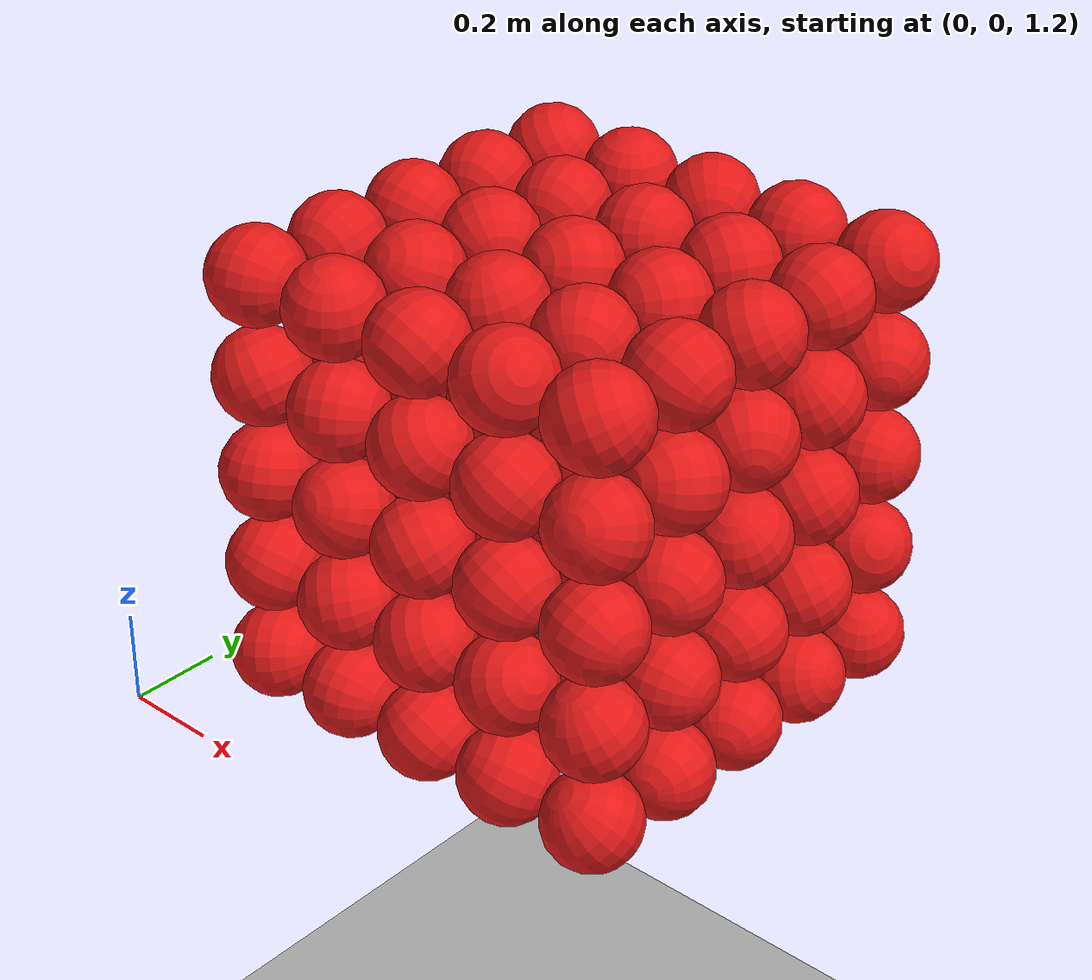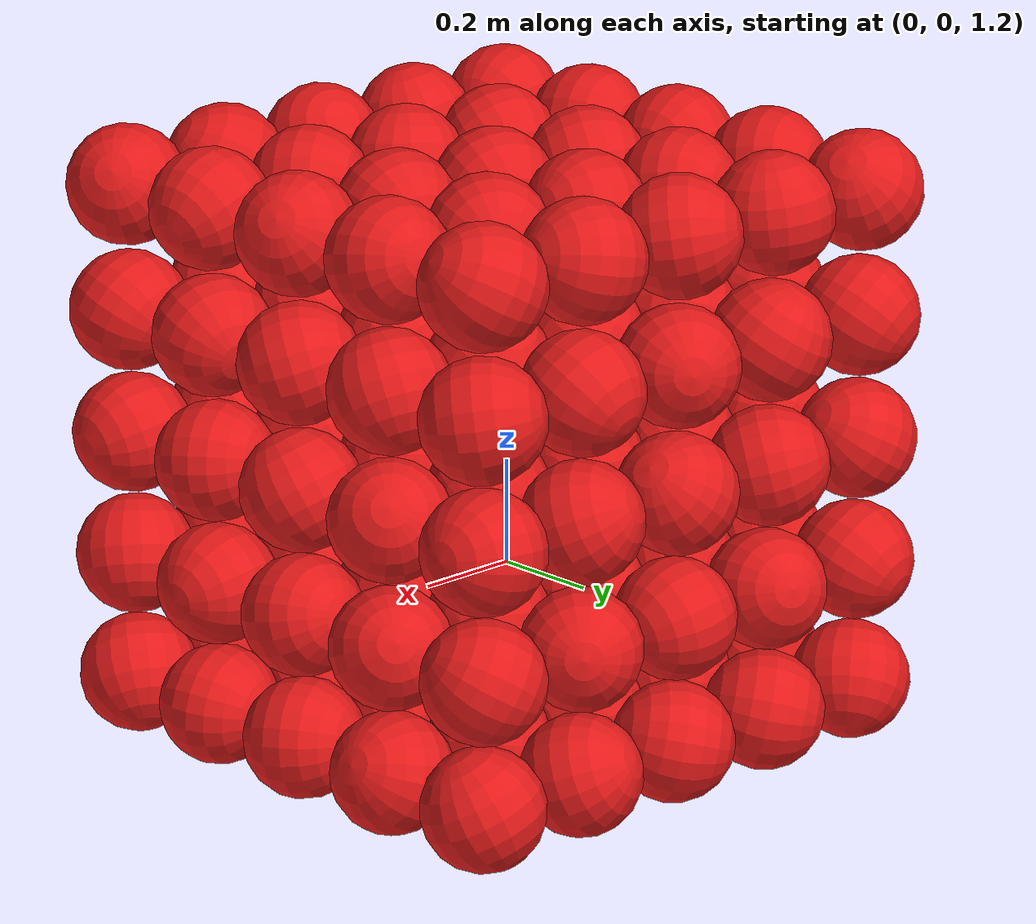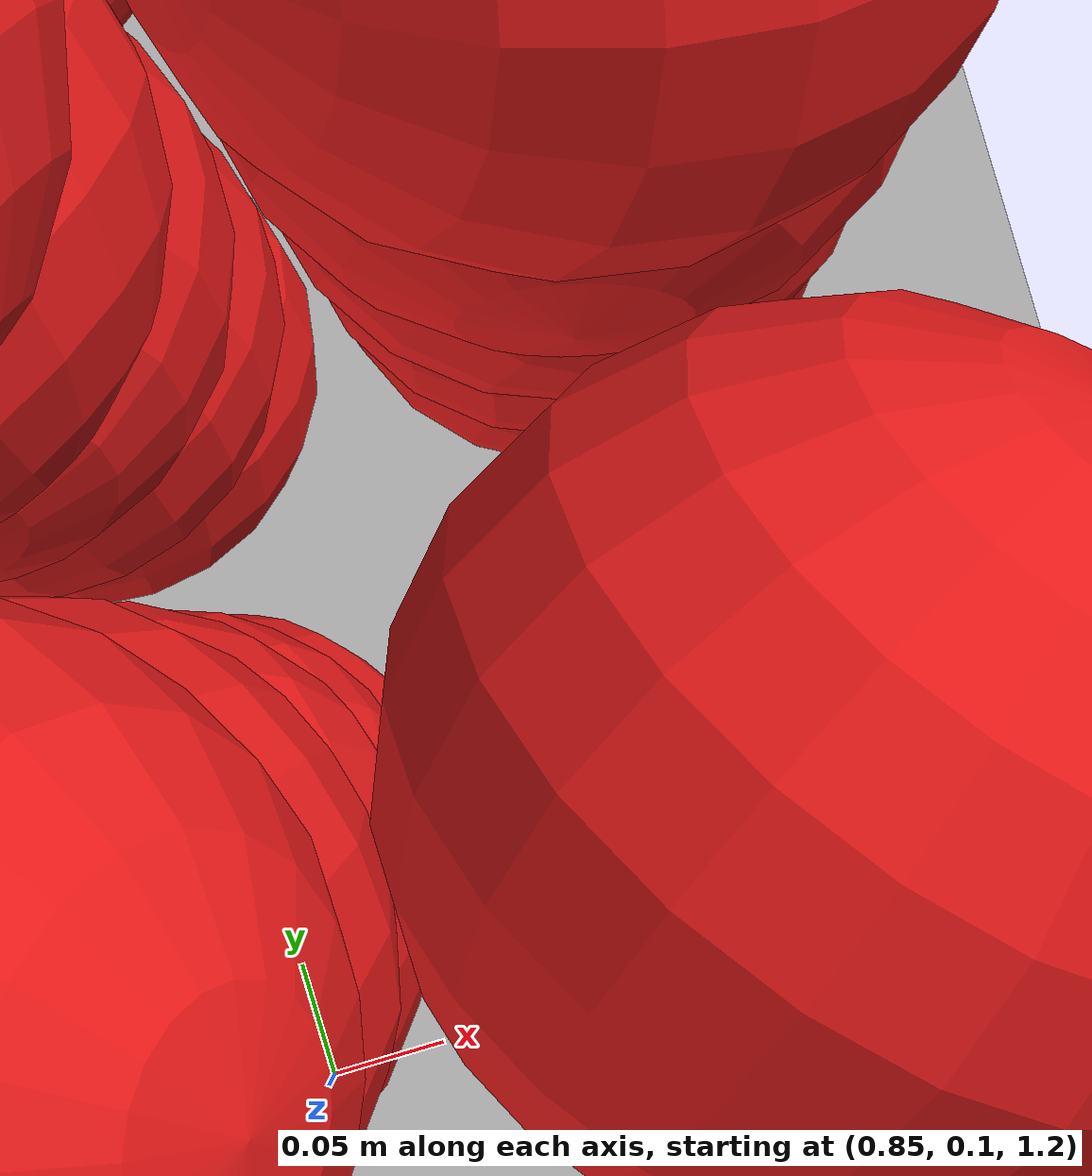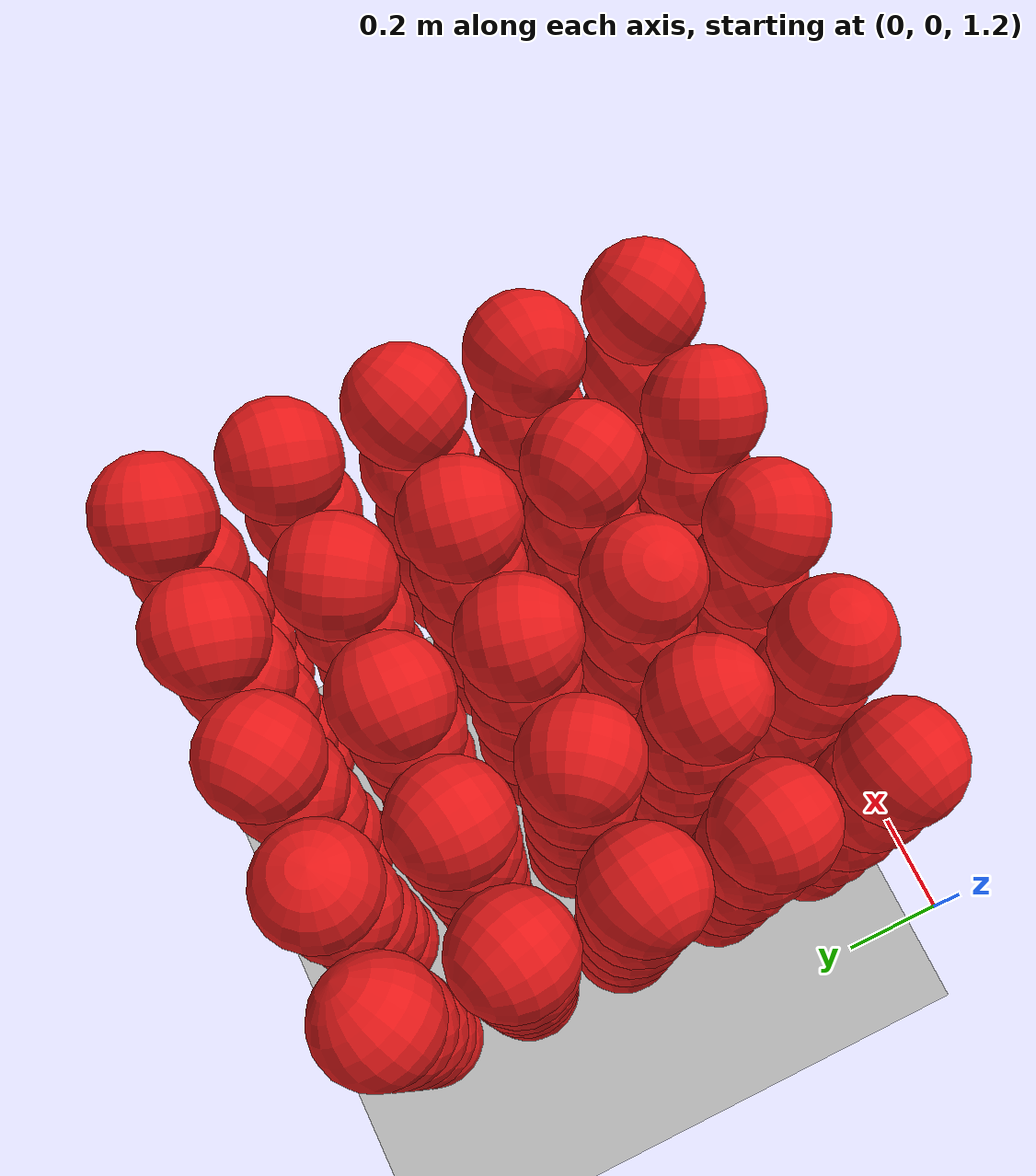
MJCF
<mujoco model="thousand">
    <compiler angle="degree"/>

    <option jacobian="sparse" cone="elliptic"/>

    <size njmax="5000" nconmax="2000" nstack="1000000000"/>

    <default>
        <geom solimp=".9 .9 .01"/>

        <default class="object5">
			<geom type="sphere" material="geom" rgba=".9 .1 .1 1" size="0.100000"/>
        </default>
    </default>

    <asset>
        <texture type="skybox" builtin="gradient" width="128" height="128" rgb1=".4 .6 .8" rgb2="0 0 0"/>
        <texture name="texgeom" type="cube" builtin="flat" mark="cross" width="128" height="128"
            rgb1="0.6 0.6 0.6" rgb2="0.6 0.6 0.6" markrgb="1 1 1"/>
        <texture name="texplane" type="2d" builtin="checker" rgb1=".4 .4 .4" rgb2=".6 .6 .6"
            width="512" height="512"/>
        <material name='geom' texture="texgeom" texuniform="true"/>
        <material name='MatPlane' reflectance='0.3' texture="texplane" texrepeat="1 1" texuniform="true"/>
    </asset>

    <visual>
        <quality shadowsize="4096" offsamples="8"/>
        <map znear="0.1" force="0.05"/>
    </visual>

    <statistic extent="4"/>

    <worldbody>
        <light directional="true" diffuse=".8 .8 .8" pos="0 0 10" dir="0 0 -10"/>

        <geom pos="0 0 0" type="plane" size="200 200 5" rgba=".7 .7 .7 1" material="MatPlane"/>
		<body pos="0.210204 0.210387 1.311065" quat="-0.228573 0.640775 0.022163 0.732578"><inertial pos="0 0 0" mass="1500.000000" diaginertia="6.000000 6.000000 6.000000"/> <freejoint/> <geom class="object5"/> </body>
		<body pos="0.210301 0.210706 1.521915" quat="0.438948 -0.782514 0.352924 -0.265408"><inertial pos="0 0 0" mass="1500.000000" diaginertia="6.000000 6.000000 6.000000"/> <freejoint/> <geom class="object5"/> </body>
		<body pos="0.210502 0.210399 1.731960" quat="-0.741213 0.118067 -0.063209 -0.657775"><inertial pos="0 0 0" mass="1500.000000" diaginertia="6.000000 6.000000 6.000000"/> <freejoint/> <geom class="object5"/> </body>
		<body pos="0.210525 0.210320 1.941781" quat="-0.690845 0.193381 0.216633 -0.662123"><inertial pos="0 0 0" mass="1500.000000" diaginertia="6.000000 6.000000 6.000000"/> <freejoint/> <geom class="object5"/> </body>
		<body pos="0.210846 0.210862 2.151759" quat="0.609824 0.205652 0.691034 0.329081"><inertial pos="0 0 0" mass="1500.000000" diaginertia="6.000000 6.000000 6.000000"/> <freejoint/> <geom class="object5"/> </body>
		<body pos="0.210057 0.420009 1.311831" quat="-0.284909 -0.398940 -0.676387 -0.549704"><inertial pos="0 0 0" mass="1500.000000" diaginertia="6.000000 6.000000 6.000000"/> <freejoint/> <geom class="object5"/> </body>
		<body pos="0.210384 0.420837 1.521762" quat="0.878788 0.380558 -0.279840 0.067800"><inertial pos="0 0 0" mass="1500.000000" diaginertia="6.000000 6.000000 6.000000"/> <freejoint/> <geom class="object5"/> </body>
		<body pos="0.210744 0.420929 1.731128" quat="-0.538417 -0.331889 -0.312354 0.708796"><inertial pos="0 0 0" mass="1500.000000" diaginertia="6.000000 6.000000 6.000000"/> <freejoint/> <geom class="object5"/> </body>
		<body pos="0.210676 0.420017 1.941517" quat="0.018755 -0.158579 0.641740 0.750114"><inertial pos="0 0 0" mass="1500.000000" diaginertia="6.000000 6.000000 6.000000"/> <freejoint/> <geom class="object5"/> </body>
		<body pos="0.210555 0.420571 2.151232" quat="0.708227 -0.622613 0.174109 0.283644"><inertial pos="0 0 0" mass="1500.000000" diaginertia="6.000000 6.000000 6.000000"/> <freejoint/> <geom class="object5"/> </body>
		<body pos="0.210454 0.630754 1.311566" quat="0.429868 0.362306 0.720002 0.406872"><inertial pos="0 0 0" mass="1500.000000" diaginertia="6.000000 6.000000 6.000000"/> <freejoint/> <geom class="object5"/> </body>
		<body pos="0.210567 0.630600 1.521591" quat="0.811851 -0.102672 0.338495 -0.464519"><inertial pos="0 0 0" mass="1500.000000" diaginertia="6.000000 6.000000 6.000000"/> <freejoint/> <geom class="object5"/> </body>
		<body pos="0.210771 0.630160 1.731079" quat="-0.390053 -0.362059 -0.665592 -0.523220"><inertial pos="0 0 0" mass="1500.000000" diaginertia="6.000000 6.000000 6.000000"/> <freejoint/> <geom class="object5"/> </body>
		<body pos="0.210992 0.630611 1.941483" quat="-0.417193 0.773116 0.351419 0.323644"><inertial pos="0 0 0" mass="1500.000000" diaginertia="6.000000 6.000000 6.000000"/> <freejoint/> <geom class="object5"/> </body>
		<body pos="0.210175 0.630470 2.151805" quat="-0.532634 0.402605 0.502252 -0.549502"><inertial pos="0 0 0" mass="1500.000000" diaginertia="6.000000 6.000000 6.000000"/> <freejoint/> <geom class="object5"/> </body>
		<body pos="0.210066 0.840060 1.311455" quat="0.684636 -0.274538 -0.114244 -0.665471"><inertial pos="0 0 0" mass="1500.000000" diaginertia="6.000000 6.000000 6.000000"/> <freejoint/> <geom class="object5"/> </body>
		<body pos="0.210653 0.840537 1.521729" quat="-0.547184 0.586343 -0.062551 -0.594037"><inertial pos="0 0 0" mass="1500.000000" diaginertia="6.000000 6.000000 6.000000"/> <freejoint/> <geom class="object5"/> </body>
		<body pos="0.210401 0.840868 1.731957" quat="-0.609122 0.566301 0.536965 0.141221"><inertial pos="0 0 0" mass="1500.000000" diaginertia="6.000000 6.000000 6.000000"/> <freejoint/> <geom class="object5"/> </body>
		<body pos="0.210490 0.840445 1.941397" quat="-0.558878 0.594331 -0.023001 0.577838"><inertial pos="0 0 0" mass="1500.000000" diaginertia="6.000000 6.000000 6.000000"/> <freejoint/> <geom class="object5"/> </body>
		<body pos="0.210728 0.840543 2.151631" quat="-0.376084 0.149526 0.596567 0.693045"><inertial pos="0 0 0" mass="1500.000000" diaginertia="6.000000 6.000000 6.000000"/> <freejoint/> <geom class="object5"/> </body>
		<body pos="0.210951 1.050067 1.311946" quat="-0.005706 -0.732092 -0.586996 -0.345608"><inertial pos="0 0 0" mass="1500.000000" diaginertia="6.000000 6.000000 6.000000"/> <freejoint/> <geom class="object5"/> </body>
		<body pos="0.210169 1.050735 1.521880" quat="0.554397 0.271389 0.470901 -0.630273"><inertial pos="0 0 0" mass="1500.000000" diaginertia="6.000000 6.000000 6.000000"/> <freejoint/> <geom class="object5"/> </body>
		<body pos="0.210523 1.050059 1.731814" quat="-0.337478 0.719338 0.491982 -0.355829"><inertial pos="0 0 0" mass="1500.000000" diaginertia="6.000000 6.000000 6.000000"/> <freejoint/> <geom class="object5"/> </body>
		<body pos="0.210211 1.050340 1.941459" quat="0.052675 -0.181026 0.461611 -0.866816"><inertial pos="0 0 0" mass="1500.000000" diaginertia="6.000000 6.000000 6.000000"/> <freejoint/> <geom class="object5"/> </body>
		<body pos="0.210375 1.050187 2.151372" quat="-0.296962 -0.845296 0.325189 0.302555"><inertial pos="0 0 0" mass="1500.000000" diaginertia="6.000000 6.000000 6.000000"/> <freejoint/> <geom class="object5"/> </body>
		<body pos="0.420833 0.210436 1.311636" quat="0.482702 -0.421638 -0.530500 0.554788"><inertial pos="0 0 0" mass="1500.000000" diaginertia="6.000000 6.000000 6.000000"/> <freejoint/> <geom class="object5"/> </body>
		<body pos="0.420026 0.210940 1.521627" quat="-0.508897 0.611561 -0.044826 0.604158"><inertial pos="0 0 0" mass="1500.000000" diaginertia="6.000000 6.000000 6.000000"/> <freejoint/> <geom class="object5"/> </body>
		<body pos="0.420973 0.210284 1.731539" quat="-0.725213 -0.510107 -0.220727 0.406371"><inertial pos="0 0 0" mass="1500.000000" diaginertia="6.000000 6.000000 6.000000"/> <freejoint/> <geom class="object5"/> </body>
		<body pos="0.420320 0.210553 1.941380" quat="0.360531 0.698950 -0.076200 -0.612927"><inertial pos="0 0 0" mass="1500.000000" diaginertia="6.000000 6.000000 6.000000"/> <freejoint/> <geom class="object5"/> </body>
		<body pos="0.420100 0.210336 2.151292" quat="0.675398 0.007714 0.128323 -0.726162"><inertial pos="0 0 0" mass="1500.000000" diaginertia="6.000000 6.000000 6.000000"/> <freejoint/> <geom class="object5"/> </body>
		<body pos="0.420267 0.420783 1.311538" quat="0.680383 0.058188 -0.134682 0.718021"><inertial pos="0 0 0" mass="1500.000000" diaginertia="6.000000 6.000000 6.000000"/> <freejoint/> <geom class="object5"/> </body>
		<body pos="0.420599 0.420941 1.521761" quat="-0.725787 -0.400761 -0.536051 -0.158974"><inertial pos="0 0 0" mass="1500.000000" diaginertia="6.000000 6.000000 6.000000"/> <freejoint/> <geom class="object5"/> </body>
		<body pos="0.420502 0.420841 1.731780" quat="0.288833 0.065541 -0.693715 0.656536"><inertial pos="0 0 0" mass="1500.000000" diaginertia="6.000000 6.000000 6.000000"/> <freejoint/> <geom class="object5"/> </body>
		<body pos="0.420628 0.420776 1.941868" quat="-0.696947 0.170010 -0.444035 0.536837"><inertial pos="0 0 0" mass="1500.000000" diaginertia="6.000000 6.000000 6.000000"/> <freejoint/> <geom class="object5"/> </body>
		<body pos="0.420928 0.420847 2.151039" quat="0.052634 -0.263320 -0.831225 -0.486783"><inertial pos="0 0 0" mass="1500.000000" diaginertia="6.000000 6.000000 6.000000"/> <freejoint/> <geom class="object5"/> </body>
		<body pos="0.420059 0.630231 1.311935" quat="0.363607 -0.547612 0.554979 0.509813"><inertial pos="0 0 0" mass="1500.000000" diaginertia="6.000000 6.000000 6.000000"/> <freejoint/> <geom class="object5"/> </body>
		<body pos="0.420046 0.630330 1.521717" quat="-0.710692 -0.390060 -0.293450 0.506615"><inertial pos="0 0 0" mass="1500.000000" diaginertia="6.000000 6.000000 6.000000"/> <freejoint/> <geom class="object5"/> </body>
		<body pos="0.420522 0.630115 1.731139" quat="-0.140787 -0.502458 0.655498 -0.545928"><inertial pos="0 0 0" mass="1500.000000" diaginertia="6.000000 6.000000 6.000000"/> <freejoint/> <geom class="object5"/> </body>
		<body pos="0.420228 0.630027 1.941891" quat="0.534085 -0.715543 -0.385426 0.232806"><inertial pos="0 0 0" mass="1500.000000" diaginertia="6.000000 6.000000 6.000000"/> <freejoint/> <geom class="object5"/> </body>
		<body pos="0.420612 0.630066 2.151177" quat="-0.569366 0.621541 0.138681 -0.519881"><inertial pos="0 0 0" mass="1500.000000" diaginertia="6.000000 6.000000 6.000000"/> <freejoint/> <geom class="object5"/> </body>
		<body pos="0.420675 0.840099 1.311004" quat="0.218042 -0.507207 -0.240376 -0.798385"><inertial pos="0 0 0" mass="1500.000000" diaginertia="6.000000 6.000000 6.000000"/> <freejoint/> <geom class="object5"/> </body>
		<body pos="0.420506 0.840263 1.521006" quat="0.666412 -0.008635 -0.437372 0.603760"><inertial pos="0 0 0" mass="1500.000000" diaginertia="6.000000 6.000000 6.000000"/> <freejoint/> <geom class="object5"/> </body>
		<body pos="0.420120 0.840532 1.731170" quat="0.642147 0.613926 -0.011498 -0.458923"><inertial pos="0 0 0" mass="1500.000000" diaginertia="6.000000 6.000000 6.000000"/> <freejoint/> <geom class="object5"/> </body>
		<body pos="0.420711 0.840757 1.941480" quat="0.602501 0.603525 0.125914 0.506849"><inertial pos="0 0 0" mass="1500.000000" diaginertia="6.000000 6.000000 6.000000"/> <freejoint/> <geom class="object5"/> </body>
		<body pos="0.420476 0.840778 2.151896" quat="0.702158 -0.567206 0.194476 0.383966"><inertial pos="0 0 0" mass="1500.000000" diaginertia="6.000000 6.000000 6.000000"/> <freejoint/> <geom class="object5"/> </body>
		<body pos="0.420191 1.050444 1.311292" quat="-0.131705 0.370434 -0.508478 0.766083"><inertial pos="0 0 0" mass="1500.000000" diaginertia="6.000000 6.000000 6.000000"/> <freejoint/> <geom class="object5"/> </body>
		<body pos="0.420536 1.050912 1.521466" quat="-0.237070 0.361569 0.480094 0.763266"><inertial pos="0 0 0" mass="1500.000000" diaginertia="6.000000 6.000000 6.000000"/> <freejoint/> <geom class="object5"/> </body>
		<body pos="0.420062 1.050783 1.731168" quat="0.552205 -0.614735 -0.013193 0.563023"><inertial pos="0 0 0" mass="1500.000000" diaginertia="6.000000 6.000000 6.000000"/> <freejoint/> <geom class="object5"/> </body>
		<body pos="0.420579 1.050276 1.941362" quat="0.067388 0.859884 -0.425201 0.274341"><inertial pos="0 0 0" mass="1500.000000" diaginertia="6.000000 6.000000 6.000000"/> <freejoint/> <geom class="object5"/> </body>
		<body pos="0.420038 1.050757 2.151187" quat="0.034734 0.331995 -0.941252 -0.051165"><inertial pos="0 0 0" mass="1500.000000" diaginertia="6.000000 6.000000 6.000000"/> <freejoint/> <geom class="object5"/> </body>
		<body pos="0.630921 0.210363 1.311064" quat="0.270297 -0.827019 0.333102 -0.363349"><inertial pos="0 0 0" mass="1500.000000" diaginertia="6.000000 6.000000 6.000000"/> <freejoint/> <geom class="object5"/> </body>
		<body pos="0.630691 0.210055 1.521327" quat="0.203034 0.868932 -0.081595 -0.443933"><inertial pos="0 0 0" mass="1500.000000" diaginertia="6.000000 6.000000 6.000000"/> <freejoint/> <geom class="object5"/> </body>
		<body pos="0.630037 0.210565 1.731046" quat="0.611353 -0.064349 0.516216 0.596345"><inertial pos="0 0 0" mass="1500.000000" diaginertia="6.000000 6.000000 6.000000"/> <freejoint/> <geom class="object5"/> </body>
		<body pos="0.630682 0.210357 1.941802" quat="0.165452 0.391106 0.178837 0.887513"><inertial pos="0 0 0" mass="1500.000000" diaginertia="6.000000 6.000000 6.000000"/> <freejoint/> <geom class="object5"/> </body>
		<body pos="0.630898 0.210456 2.151182" quat="-0.223856 -0.619225 -0.640835 0.394688"><inertial pos="0 0 0" mass="1500.000000" diaginertia="6.000000 6.000000 6.000000"/> <freejoint/> <geom class="object5"/> </body>
		<body pos="0.630243 0.420793 1.311799" quat="-0.621295 -0.017465 0.737302 0.264715"><inertial pos="0 0 0" mass="1500.000000" diaginertia="6.000000 6.000000 6.000000"/> <freejoint/> <geom class="object5"/> </body>
		<body pos="0.630215 0.420973 1.521537" quat="0.713987 0.673264 0.116981 -0.152492"><inertial pos="0 0 0" mass="1500.000000" diaginertia="6.000000 6.000000 6.000000"/> <freejoint/> <geom class="object5"/> </body>
		<body pos="0.630292 0.420803 1.731989" quat="0.020931 -0.771739 0.102734 -0.627237"><inertial pos="0 0 0" mass="1500.000000" diaginertia="6.000000 6.000000 6.000000"/> <freejoint/> <geom class="object5"/> </body>
		<body pos="0.630392 0.420207 1.941786" quat="-0.061966 -0.062397 0.503977 -0.859229"><inertial pos="0 0 0" mass="1500.000000" diaginertia="6.000000 6.000000 6.000000"/> <freejoint/> <geom class="object5"/> </body>
		<body pos="0.630951 0.420735 2.151619" quat="0.129529 -0.572167 0.809307 0.029491"><inertial pos="0 0 0" mass="1500.000000" diaginertia="6.000000 6.000000 6.000000"/> <freejoint/> <geom class="object5"/> </body>
		<body pos="0.630419 0.630775 1.311697" quat="0.690992 0.130948 -0.484361 -0.520363"><inertial pos="0 0 0" mass="1500.000000" diaginertia="6.000000 6.000000 6.000000"/> <freejoint/> <geom class="object5"/> </body>
		<body pos="0.630170 0.630066 1.521375" quat="0.312943 -0.153315 -0.641462 -0.683438"><inertial pos="0 0 0" mass="1500.000000" diaginertia="6.000000 6.000000 6.000000"/> <freejoint/> <geom class="object5"/> </body>
		<body pos="0.630656 0.630753 1.731068" quat="-0.533276 -0.008653 -0.624343 0.570734"><inertial pos="0 0 0" mass="1500.000000" diaginertia="6.000000 6.000000 6.000000"/> <freejoint/> <geom class="object5"/> </body>
		<body pos="0.630808 0.630677 1.941931" quat="0.203981 0.107061 0.720492 -0.654080"><inertial pos="0 0 0" mass="1500.000000" diaginertia="6.000000 6.000000 6.000000"/> <freejoint/> <geom class="object5"/> </body>
		<body pos="0.630085 0.630961 2.151405" quat="0.292098 -0.148129 0.780367 0.532695"><inertial pos="0 0 0" mass="1500.000000" diaginertia="6.000000 6.000000 6.000000"/> <freejoint/> <geom class="object5"/> </body>
		<body pos="0.630246 0.840416 1.311370" quat="0.373898 -0.599530 0.379888 -0.597034"><inertial pos="0 0 0" mass="1500.000000" diaginertia="6.000000 6.000000 6.000000"/> <freejoint/> <geom class="object5"/> </body>
		<body pos="0.630018 0.840447 1.521838" quat="0.418931 0.618308 -0.422738 0.513308"><inertial pos="0 0 0" mass="1500.000000" diaginertia="6.000000 6.000000 6.000000"/> <freejoint/> <geom class="object5"/> </body>
		<body pos="0.630256 0.840060 1.731969" quat="-0.552493 -0.343909 -0.593726 -0.473252"><inertial pos="0 0 0" mass="1500.000000" diaginertia="6.000000 6.000000 6.000000"/> <freejoint/> <geom class="object5"/> </body>
		<body pos="0.630680 0.840028 1.941852" quat="-0.431468 -0.154556 0.303748 0.835276"><inertial pos="0 0 0" mass="1500.000000" diaginertia="6.000000 6.000000 6.000000"/> <freejoint/> <geom class="object5"/> </body>
		<body pos="0.630292 0.840967 2.151779" quat="-0.567804 -0.440737 -0.425074 -0.550146"><inertial pos="0 0 0" mass="1500.000000" diaginertia="6.000000 6.000000 6.000000"/> <freejoint/> <geom class="object5"/> </body>
		<body pos="0.630910 1.050048 1.311910" quat="-0.771663 -0.298771 -0.547633 0.123979"><inertial pos="0 0 0" mass="1500.000000" diaginertia="6.000000 6.000000 6.000000"/> <freejoint/> <geom class="object5"/> </body>
		<body pos="0.630573 1.050303 1.521773" quat="-0.631993 -0.302699 0.561716 0.439810"><inertial pos="0 0 0" mass="1500.000000" diaginertia="6.000000 6.000000 6.000000"/> <freejoint/> <geom class="object5"/> </body>
		<body pos="0.630023 1.050966 1.731398" quat="0.028267 0.429985 0.098804 0.896968"><inertial pos="0 0 0" mass="1500.000000" diaginertia="6.000000 6.000000 6.000000"/> <freejoint/> <geom class="object5"/> </body>
		<body pos="0.630534 1.050641 1.941337" quat="0.649895 0.520137 -0.529918 0.162117"><inertial pos="0 0 0" mass="1500.000000" diaginertia="6.000000 6.000000 6.000000"/> <freejoint/> <geom class="object5"/> </body>
		<body pos="0.630871 1.050589 2.151766" quat="0.400570 -0.604196 0.221052 0.652401"><inertial pos="0 0 0" mass="1500.000000" diaginertia="6.000000 6.000000 6.000000"/> <freejoint/> <geom class="object5"/> </body>
		<body pos="0.840334 0.210491 1.311225" quat="0.479546 -0.172935 0.835734 0.204152"><inertial pos="0 0 0" mass="1500.000000" diaginertia="6.000000 6.000000 6.000000"/> <freejoint/> <geom class="object5"/> </body>
		<body pos="0.840354 0.210208 1.521077" quat="0.159892 -0.442870 0.156941 -0.868142"><inertial pos="0 0 0" mass="1500.000000" diaginertia="6.000000 6.000000 6.000000"/> <freejoint/> <geom class="object5"/> </body>
		<body pos="0.840897 0.210175 1.731721" quat="-0.840260 -0.051132 0.534682 0.073916"><inertial pos="0 0 0" mass="1500.000000" diaginertia="6.000000 6.000000 6.000000"/> <freejoint/> <geom class="object5"/> </body>
		<body pos="0.840635 0.210957 1.941243" quat="0.268264 0.512523 0.734025 0.355754"><inertial pos="0 0 0" mass="1500.000000" diaginertia="6.000000 6.000000 6.000000"/> <freejoint/> <geom class="object5"/> </body>
		<body pos="0.840969 0.210003 2.151080" quat="0.158044 -0.379546 0.249771 -0.876687"><inertial pos="0 0 0" mass="1500.000000" diaginertia="6.000000 6.000000 6.000000"/> <freejoint/> <geom class="object5"/> </body>
		<body pos="0.840582 0.420868 1.311131" quat="-0.248506 -0.749268 -0.578461 0.205488"><inertial pos="0 0 0" mass="1500.000000" diaginertia="6.000000 6.000000 6.000000"/> <freejoint/> <geom class="object5"/> </body>
		<body pos="0.840927 0.420738 1.521005" quat="-0.093078 0.105863 -0.278735 -0.949966"><inertial pos="0 0 0" mass="1500.000000" diaginertia="6.000000 6.000000 6.000000"/> <freejoint/> <geom class="object5"/> </body>
		<body pos="0.840672 0.420677 1.731378" quat="-0.124272 0.062459 -0.849373 -0.509137"><inertial pos="0 0 0" mass="1500.000000" diaginertia="6.000000 6.000000 6.000000"/> <freejoint/> <geom class="object5"/> </body>
		<body pos="0.840426 0.420143 1.941988" quat="0.516469 0.635136 0.552638 -0.156377"><inertial pos="0 0 0" mass="1500.000000" diaginertia="6.000000 6.000000 6.000000"/> <freejoint/> <geom class="object5"/> </body>
		<body pos="0.840377 0.420026 2.151775" quat="-0.307000 -0.627139 0.393345 -0.598103"><inertial pos="0 0 0" mass="1500.000000" diaginertia="6.000000 6.000000 6.000000"/> <freejoint/> <geom class="object5"/> </body>
		<body pos="0.840111 0.630942 1.311855" quat="0.532946 -0.549615 -0.397396 0.505933"><inertial pos="0 0 0" mass="1500.000000" diaginertia="6.000000 6.000000 6.000000"/> <freejoint/> <geom class="object5"/> </body>
		<body pos="0.840807 0.630276 1.521311" quat="-0.186634 -0.127433 -0.678513 0.698962"><inertial pos="0 0 0" mass="1500.000000" diaginertia="6.000000 6.000000 6.000000"/> <freejoint/> <geom class="object5"/> </body>
		<body pos="0.840790 0.630652 1.731975" quat="-0.706544 0.030301 0.060890 -0.704393"><inertial pos="0 0 0" mass="1500.000000" diaginertia="6.000000 6.000000 6.000000"/> <freejoint/> <geom class="object5"/> </body>
		<body pos="0.840644 0.630407 1.941692" quat="0.382326 -0.388144 0.650195 0.529544"><inertial pos="0 0 0" mass="1500.000000" diaginertia="6.000000 6.000000 6.000000"/> <freejoint/> <geom class="object5"/> </body>
		<body pos="0.840987 0.630612 2.151366" quat="-0.513904 0.699948 0.303498 0.392256"><inertial pos="0 0 0" mass="1500.000000" diaginertia="6.000000 6.000000 6.000000"/> <freejoint/> <geom class="object5"/> </body>
		<body pos="0.840177 0.840241 1.311904" quat="0.382931 0.613668 -0.380420 0.576243"><inertial pos="0 0 0" mass="1500.000000" diaginertia="6.000000 6.000000 6.000000"/> <freejoint/> <geom class="object5"/> </body>
		<body pos="0.840828 0.840880 1.521054" quat="-0.342626 0.486849 0.623328 -0.506999"><inertial pos="0 0 0" mass="1500.000000" diaginertia="6.000000 6.000000 6.000000"/> <freejoint/> <geom class="object5"/> </body>
		<body pos="0.840301 0.840052 1.731546" quat="-0.106826 -0.511695 -0.498422 -0.691616"><inertial pos="0 0 0" mass="1500.000000" diaginertia="6.000000 6.000000 6.000000"/> <freejoint/> <geom class="object5"/> </body>
		<body pos="0.840005 0.840187 1.941651" quat="0.200904 0.928264 0.294254 -0.106670"><inertial pos="0 0 0" mass="1500.000000" diaginertia="6.000000 6.000000 6.000000"/> <freejoint/> <geom class="object5"/> </body>
		<body pos="0.840377 0.840009 2.151217" quat="-0.099201 -0.280504 -0.628405 -0.718738"><inertial pos="0 0 0" mass="1500.000000" diaginertia="6.000000 6.000000 6.000000"/> <freejoint/> <geom class="object5"/> </body>
		<body pos="0.840004 1.050798 1.311294" quat="0.553028 -0.147846 -0.533556 -0.622591"><inertial pos="0 0 0" mass="1500.000000" diaginertia="6.000000 6.000000 6.000000"/> <freejoint/> <geom class="object5"/> </body>
		<body pos="0.840275 1.050074 1.521792" quat="-0.315477 -0.710802 -0.259097 0.572804"><inertial pos="0 0 0" mass="1500.000000" diaginertia="6.000000 6.000000 6.000000"/> <freejoint/> <geom class="object5"/> </body>
		<body pos="0.840152 1.050310 1.731531" quat="0.062281 0.466440 -0.695678 0.542758"><inertial pos="0 0 0" mass="1500.000000" diaginertia="6.000000 6.000000 6.000000"/> <freejoint/> <geom class="object5"/> </body>
		<body pos="0.840931 1.050759 1.941118" quat="-0.798333 -0.426872 -0.263194 0.333427"><inertial pos="0 0 0" mass="1500.000000" diaginertia="6.000000 6.000000 6.000000"/> <freejoint/> <geom class="object5"/> </body>
		<body pos="0.840847 1.050779 2.151699" quat="-0.138678 -0.702925 0.320680 0.619539"><inertial pos="0 0 0" mass="1500.000000" diaginertia="6.000000 6.000000 6.000000"/> <freejoint/> <geom class="object5"/> </body>
		<body pos="1.050060 0.210919 1.311483" quat="-0.910692 -0.335719 0.086956 0.224435"><inertial pos="0 0 0" mass="1500.000000" diaginertia="6.000000 6.000000 6.000000"/> <freejoint/> <geom class="object5"/> </body>
		<body pos="1.050777 0.210661 1.521656" quat="0.216997 -0.592696 0.773292 0.060354"><inertial pos="0 0 0" mass="1500.000000" diaginertia="6.000000 6.000000 6.000000"/> <freejoint/> <geom class="object5"/> </body>
		<body pos="1.050471 0.210124 1.731842" quat="-0.506154 0.391589 -0.663786 0.387111"><inertial pos="0 0 0" mass="1500.000000" diaginertia="6.000000 6.000000 6.000000"/> <freejoint/> <geom class="object5"/> </body>
		<body pos="1.050351 0.210460 1.941049" quat="-0.350256 0.415751 0.721926 0.428129"><inertial pos="0 0 0" mass="1500.000000" diaginertia="6.000000 6.000000 6.000000"/> <freejoint/> <geom class="object5"/> </body>
		<body pos="1.050145 0.210347 2.151894" quat="-0.543996 0.533303 -0.034115 0.646910"><inertial pos="0 0 0" mass="1500.000000" diaginertia="6.000000 6.000000 6.000000"/> <freejoint/> <geom class="object5"/> </body>
		<body pos="1.050541 0.420528 1.311842" quat="-0.540288 -0.377498 -0.579647 0.479159"><inertial pos="0 0 0" mass="1500.000000" diaginertia="6.000000 6.000000 6.000000"/> <freejoint/> <geom class="object5"/> </body>
		<body pos="1.050614 0.420631 1.521731" quat="-0.465313 0.577890 -0.457864 0.489784"><inertial pos="0 0 0" mass="1500.000000" diaginertia="6.000000 6.000000 6.000000"/> <freejoint/> <geom class="object5"/> </body>
		<body pos="1.050079 0.420874 1.731605" quat="0.505636 0.313053 0.669066 -0.445735"><inertial pos="0 0 0" mass="1500.000000" diaginertia="6.000000 6.000000 6.000000"/> <freejoint/> <geom class="object5"/> </body>
		<body pos="1.050075 0.420084 1.941961" quat="0.616723 0.573032 0.247764 -0.479478"><inertial pos="0 0 0" mass="1500.000000" diaginertia="6.000000 6.000000 6.000000"/> <freejoint/> <geom class="object5"/> </body>
		<body pos="1.050648 0.420407 2.151704" quat="-0.361010 0.649918 -0.522734 0.417165"><inertial pos="0 0 0" mass="1500.000000" diaginertia="6.000000 6.000000 6.000000"/> <freejoint/> <geom class="object5"/> </body>
		<body pos="1.050686 0.630395 1.311891" quat="-0.213645 -0.098013 0.675727 0.698672"><inertial pos="0 0 0" mass="1500.000000" diaginertia="6.000000 6.000000 6.000000"/> <freejoint/> <geom class="object5"/> </body>
		<body pos="1.050208 0.630796 1.521691" quat="0.201853 -0.160041 -0.594492 -0.761723"><inertial pos="0 0 0" mass="1500.000000" diaginertia="6.000000 6.000000 6.000000"/> <freejoint/> <geom class="object5"/> </body>
		<body pos="1.050246 0.630173 1.731260" quat="0.841645 0.200747 0.200073 -0.459680"><inertial pos="0 0 0" mass="1500.000000" diaginertia="6.000000 6.000000 6.000000"/> <freejoint/> <geom class="object5"/> </body>
		<body pos="1.050785 0.630011 1.941123" quat="0.278194 0.777820 -0.222275 0.517878"><inertial pos="0 0 0" mass="1500.000000" diaginertia="6.000000 6.000000 6.000000"/> <freejoint/> <geom class="object5"/> </body>
		<body pos="1.050888 0.630076 2.151353" quat="0.680495 0.089074 0.512657 0.515921"><inertial pos="0 0 0" mass="1500.000000" diaginertia="6.000000 6.000000 6.000000"/> <freejoint/> <geom class="object5"/> </body>
		<body pos="1.050724 0.840946 1.311697" quat="-0.652108 -0.316333 -0.456268 -0.516244"><inertial pos="0 0 0" mass="1500.000000" diaginertia="6.000000 6.000000 6.000000"/> <freejoint/> <geom class="object5"/> </body>
		<body pos="1.050296 0.840257 1.521216" quat="0.051191 -0.352295 -0.423514 -0.833009"><inertial pos="0 0 0" mass="1500.000000" diaginertia="6.000000 6.000000 6.000000"/> <freejoint/> <geom class="object5"/> </body>
		<body pos="1.050885 0.840138 1.731666" quat="-0.648111 0.506844 -0.002173 0.568381"><inertial pos="0 0 0" mass="1500.000000" diaginertia="6.000000 6.000000 6.000000"/> <freejoint/> <geom class="object5"/> </body>
		<body pos="1.050017 0.840697 1.941778" quat="0.812208 0.274754 0.092668 -0.506202"><inertial pos="0 0 0" mass="1500.000000" diaginertia="6.000000 6.000000 6.000000"/> <freejoint/> <geom class="object5"/> </body>
		<body pos="1.050541 0.840274 2.151155" quat="0.740846 -0.604414 -0.124351 -0.265271"><inertial pos="0 0 0" mass="1500.000000" diaginertia="6.000000 6.000000 6.000000"/> <freejoint/> <geom class="object5"/> </body>
		<body pos="1.050881 1.050801 1.311006" quat="0.182296 -0.189771 -0.954886 -0.137652"><inertial pos="0 0 0" mass="1500.000000" diaginertia="6.000000 6.000000 6.000000"/> <freejoint/> <geom class="object5"/> </body>
		<body pos="1.050413 1.050885 1.521227" quat="0.735407 0.015258 0.498123 -0.459149"><inertial pos="0 0 0" mass="1500.000000" diaginertia="6.000000 6.000000 6.000000"/> <freejoint/> <geom class="object5"/> </body>
		<body pos="1.050192 1.050890 1.731733" quat="0.702422 -0.267587 0.617556 -0.231569"><inertial pos="0 0 0" mass="1500.000000" diaginertia="6.000000 6.000000 6.000000"/> <freejoint/> <geom class="object5"/> </body>
		<body pos="1.050987 1.050539 1.941424" quat="-0.729386 0.587732 0.267718 -0.225597"><inertial pos="0 0 0" mass="1500.000000" diaginertia="6.000000 6.000000 6.000000"/> <freejoint/> <geom class="object5"/> </body>
		<body pos="1.050700 1.050274 2.151145" quat="-0.271069 -0.538784 0.670843 0.431511"><inertial pos="0 0 0" mass="1500.000000" diaginertia="6.000000 6.000000 6.000000"/> <freejoint/> <geom class="object5"/> </body>

    </worldbody>
</mujoco>
